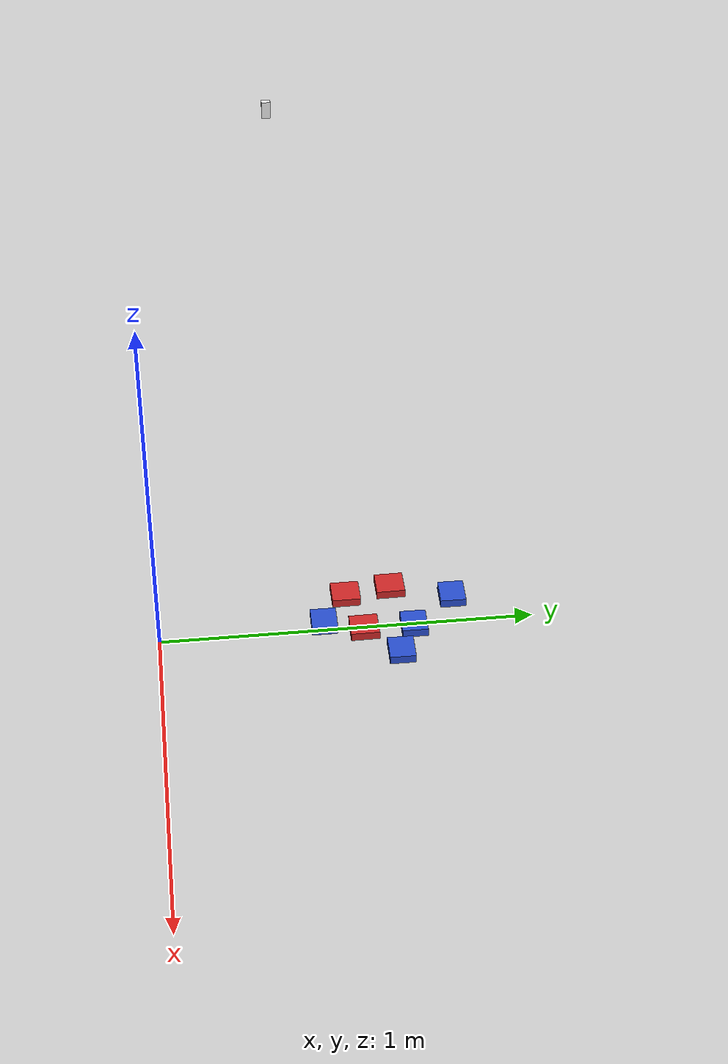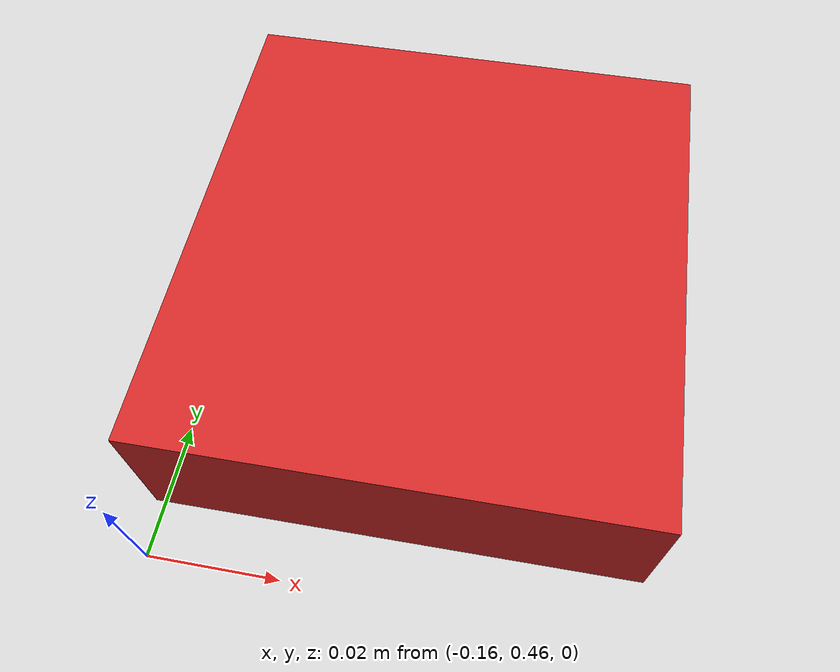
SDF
<sdf version="1.7">
 <world name="ARM_WORLD">
  <light name="sun" type="directional">
   <diffuse>1 1 1 1</diffuse>
   <specular>0.8 0.8 0.8 1</specular>
   <direction>-0.5 -0.5 -1</direction>
   <pose>0 0 2 0 -0 0</pose>
   <attenuation>
    <range>1000</range>
    <constant>1</constant>
    <linear>1</linear>
    <quadratic>0.001</quadratic>
   </attenuation>
   <spot><inner_angle>0</inner_angle><outer_angle>0</outer_angle><falloff>0</falloff></spot>
  </light>
  <model name="ground_plane">
   <static>1</static>
   <link name="link">
    <collision name="collision">
     <geometry><plane><size>100 100</size><normal>0 0 1</normal></plane></geometry>
    </collision>
    <visual name="visual">
     <geometry><plane><size>100 100</size><normal>0 0 1</normal></plane></geometry>
     <material>
      <script><uri>file://media/materials/scripts/gazebo.material</uri><name>Gazebo/Grey</name></script>
     </material>
    </visual>
    <kinematic>1</kinematic>
   </link>
  </model>
  <model name="stone">
   <pose>-2.78708 0.47413 0.031903 1e-06 -0 -0.000758</pose>
   <link name="link">
    <inertial>
     <mass>0.05</mass>
     <inertia><ixx>0.001</ixx><ixy>0</ixy><ixz>0</ixz><iyy>0.001</iyy><iyz>0</iyz><izz>0.001</izz></inertia>
    </inertial>
    <collision name="collision">
     <geometry><box><size>0.02 0.032 0.064</size></box></geometry>
     <surface>
      <contact><ode><max_vel>0</max_vel><min_depth>0.003</min_depth></ode></contact>
      <friction><ode><mu>1.13</mu><mu2>1.13</mu2></ode></friction>
     </surface>
    </collision>
    <visual name="visual">
     <geometry><box><size>0.02 0.032 0.064</size></box></geometry>
     <material>
      <script><uri>file://media/materials/scripts/gazebo.material</uri><name>Gazebo/White</name></script>
     </material>
    </visual>
   </link>
  </model>
  <gravity>0 0 -9.8</gravity>
  <magnetic_field>6e-06 2.3e-05 -4.2e-05</magnetic_field>
  <atmosphere type="adiabatic"/>
  <physics name="default_physics" default="0" type="ode">
   <max_step_size>0.001</max_step_size>
   <real_time_factor>1</real_time_factor>
   <real_time_update_rate>1000</real_time_update_rate>
  </physics>
  <scene><ambient>0.4 0.4 0.4 1</ambient><background>0.7 0.7 0.7 1</background><shadows>1</shadows></scene>
  <audio><device>default</device></audio>
  <spherical_coordinates>
   <surface_model>EARTH_WGS84</surface_model>
   <latitude_deg>0</latitude_deg>
   <longitude_deg>0</longitude_deg>
   <elevation>0</elevation>
   <heading_deg>0</heading_deg>
  </spherical_coordinates>
  <model name="place_tray">
   <pose>0.012835 0.544255 0.011674 1e-06 3e-06 0.010869</pose>
   <link name="link">
    <inertial>
     <mass>1</mass>
     <inertia>
      <ixx>0.166667</ixx>
      <ixy>0</ixy>
      <ixz>0</ixz>
      <iyy>0.166667</iyy>
      <iyz>0</iyz>
      <izz>0.166667</izz>
     </inertia>
    </inertial>
    <collision name="collision">
     <geometry><box><size>0.0729491 0.0764862 0.023348</size></box></geometry>
    </collision>
    <visual name="visual">
     <geometry><box><size>0.0729491 0.0764862 0.023348</size></box></geometry>
     <material>
      <script><name>Gazebo/Red</name><uri>file://media/materials/scripts/gazebo.material</uri></script>
     </material>
    </visual>
   </link>
  </model>
  <model name="pick_tray">
   <pose>0.012483 0.678255 0.011674 -1e-06 -8e-06 -0.006064</pose>
   <link name="link">
    <inertial>
     <mass>1</mass>
     <inertia>
      <ixx>0.166667</ixx>
      <ixy>0</ixy>
      <ixz>0</ixz>
      <iyy>0.166667</iyy>
      <iyz>0</iyz>
      <izz>0.166667</izz>
     </inertia>
    </inertial>
    <collision name="collision">
     <geometry><box><size>0.0773331 0.0689739 0.023348</size></box></geometry>
    </collision>
    <visual name="visual">
     <geometry><box><size>0.0773331 0.0689739 0.023348</size></box></geometry>
     <material>
      <script><name>Gazebo/Blue</name><uri>file://media/materials/scripts/gazebo.material</uri></script>
     </material>
    </visual>
   </link>
  </model>
  <model name="place_tray_clone">
   <pose>-0.125414 0.506868 0.011677 6.5e-05 -3e-06 0.01087</pose>
   <link name="link">
    <inertial>
     <mass>1</mass>
     <inertia>
      <ixx>0.166667</ixx>
      <ixy>0</ixy>
      <ixz>0</ixz>
      <iyy>0.166667</iyy>
      <iyz>0</iyz>
      <izz>0.166667</izz>
     </inertia>
    </inertial>
    <collision name="collision">
     <geometry><box><size>0.072949 0.076486 0.023348</size></box></geometry>
    </collision>
    <visual name="visual">
     <geometry><box><size>0.072949 0.076486 0.023348</size></box></geometry>
     <material>
      <script><name>Gazebo/Red</name><uri>file://media/materials/scripts/gazebo.material</uri></script>
     </material>
    </visual>
   </link>
  </model>
  <model name="place_tray_clone_0">
   <pose>-0.146783 0.629889 0.011665 1e-06 3e-06 0.01087</pose>
   <link name="link">
    <inertial>
     <mass>1</mass>
     <inertia>
      <ixx>0.166667</ixx>
      <ixy>0</ixy>
      <ixz>0</ixz>
      <iyy>0.166667</iyy>
      <iyz>0</iyz>
      <izz>0.166667</izz>
     </inertia>
    </inertial>
    <collision name="collision">
     <geometry><box><size>0.072949 0.076486 0.023348</size></box></geometry>
    </collision>
    <visual name="visual">
     <geometry><box><size>0.072949 0.076486 0.023348</size></box></geometry>
     <material>
      <script><name>Gazebo/Red</name><uri>file://media/materials/scripts/gazebo.material</uri></script>
     </material>
    </visual>
   </link>
  </model>
  <model name="pick_tray_clone">
   <pose>-0.021838 0.439575 0.011674 -1e-06 9e-06 -0.006064</pose>
   <link name="link">
    <inertial>
     <mass>1</mass>
     <inertia>
      <ixx>0.166667</ixx>
      <ixy>0</ixy>
      <ixz>0</ixz>
      <iyy>0.166667</iyy>
      <iyz>0</iyz>
      <izz>0.166667</izz>
     </inertia>
    </inertial>
    <collision name="collision">
     <geometry><box><size>0.077333 0.068974 0.023348</size></box></geometry>
    </collision>
    <visual name="visual">
     <geometry><box><size>0.077333 0.068974 0.023348</size></box></geometry>
     <material>
      <script><name>Gazebo/Blue</name><uri>file://media/materials/scripts/gazebo.material</uri></script>
     </material>
    </visual>
   </link>
  </model>
  <model name="pick_tray_clone_0">
   <pose>0.111536 0.633657 0.011675 1e-06 1.8e-05 -0.006065</pose>
   <link name="link">
    <inertial>
     <mass>1</mass>
     <inertia>
      <ixx>0.166667</ixx>
      <ixy>0</ixy>
      <ixz>0</ixz>
      <iyy>0.166667</iyy>
      <iyz>0</iyz>
      <izz>0.166667</izz>
     </inertia>
    </inertial>
    <collision name="collision">
     <geometry><box><size>0.077333 0.068974 0.023348</size></box></geometry>
    </collision>
    <visual name="visual">
     <geometry><box><size>0.077333 0.068974 0.023348</size></box></geometry>
     <material>
      <script><name>Gazebo/Blue</name><uri>file://media/materials/scripts/gazebo.material</uri></script>
     </material>
    </visual>
   </link>
  </model>
  <model name="pick_tray_clone_1">
   <pose>-0.094758 0.794181 0.011675 -8e-06 -1e-05 -0.006065</pose>
   <link name="link">
    <inertial>
     <mass>1</mass>
     <inertia>
      <ixx>0.166667</ixx>
      <ixy>0</ixy>
      <ixz>0</ixz>
      <iyy>0.166667</iyy>
      <iyz>0</iyz>
      <izz>0.166667</izz>
     </inertia>
    </inertial>
    <collision name="collision">
     <geometry><box><size>0.077333 0.068974 0.023348</size></box></geometry>
    </collision>
    <visual name="visual">
     <geometry><box><size>0.077333 0.068974 0.023348</size></box></geometry>
     <material>
      <script><name>Gazebo/Blue</name><uri>file://media/materials/scripts/gazebo.material</uri></script>
     </material>
    </visual>
   </link>
  </model>
 </world>
</sdf>
